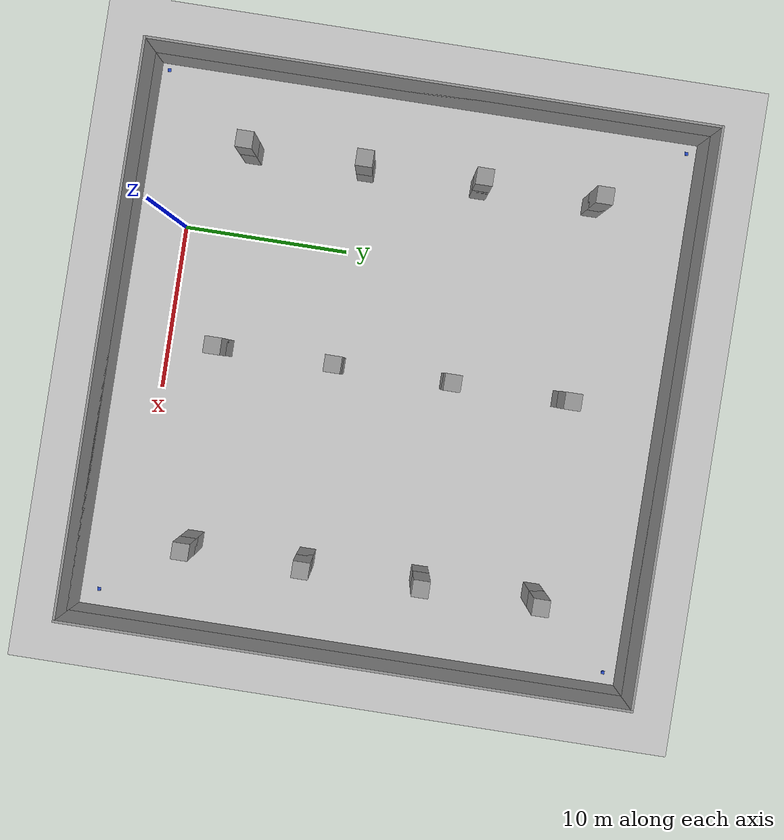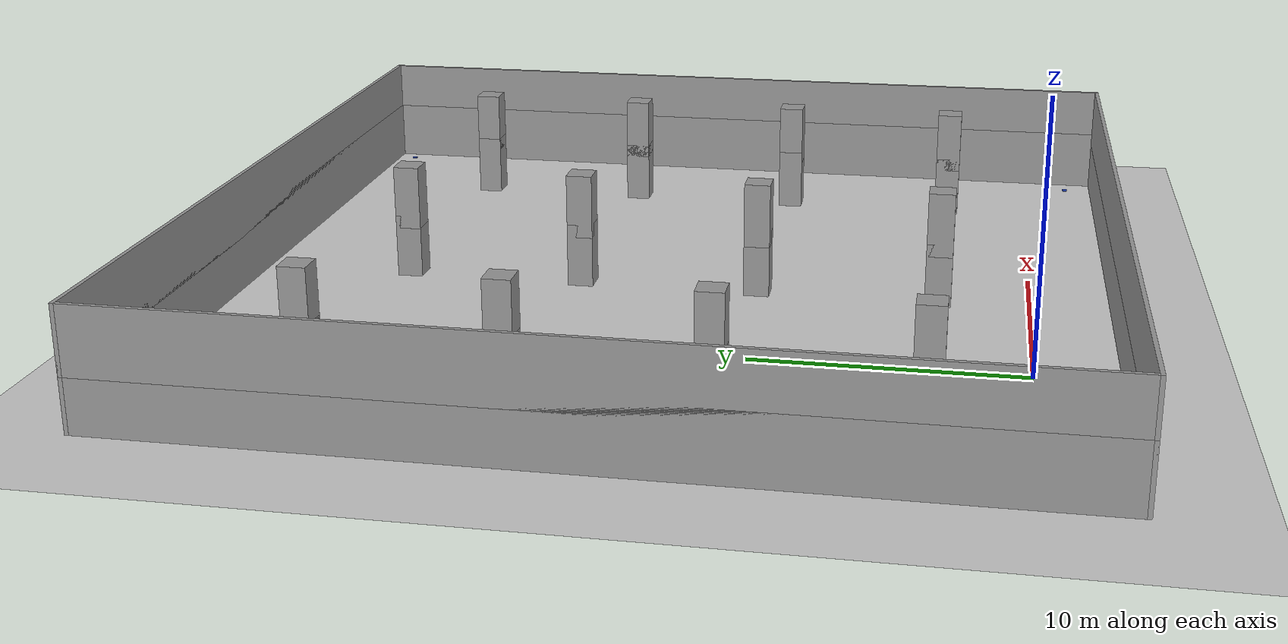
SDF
<sdf version="1.6">
 <world name="default">
  <light name="sun" type="directional">
   <pose>0 0 10 0 -0 0</pose>
   <diffuse>0.8 0.8 0.8 1</diffuse>
   <specular>0.2 0.2 0.2 1</specular>
   <attenuation>
    <range>1000</range>
    <constant>0.9</constant>
    <linear>0.01</linear>
    <quadratic>0.001</quadratic>
   </attenuation>
   <direction>-0.5 0.1 -0.9</direction>
  </light>
  <model name="ground_plane">
   <static>1</static>
   <link name="link">
    <collision name="collision">
     <geometry><plane><normal>0 0 1</normal><size>100 100</size></plane></geometry>
     <surface>
      <contact><collide_bitmask>65535</collide_bitmask></contact>
      <friction><ode><mu>100</mu><mu2>50</mu2></ode></friction>
     </surface>
    </collision>
    <visual name="visual">
     <cast_shadows>0</cast_shadows>
     <geometry><plane><normal>0 0 1</normal><size>100 100</size></plane></geometry>
     <material>
      <script><uri>file://media/materials/scripts/gazebo.material</uri><name>Gazebo/Grey</name></script>
     </material>
    </visual>
   </link>
  </model>
  <gravity>0 0 -9.8</gravity>
  <magnetic_field>6e-06 2.3e-05 -4.2e-05</magnetic_field>
  <atmosphere type="adiabatic"/>
  <physics name="default_physics" default="0" type="ode">
   <max_step_size>0.001</max_step_size>
   <real_time_factor>1</real_time_factor>
   <real_time_update_rate>1000</real_time_update_rate>
  </physics>
  <scene><ambient>0.4 0.4 0.4 1</ambient><background>0.7 0.7 0.7 1</background><shadows>1</shadows></scene>
  <spherical_coordinates>
   <surface_model>EARTH_WGS84</surface_model>
   <latitude_deg>0</latitude_deg>
   <longitude_deg>0</longitude_deg>
   <elevation>0</elevation>
   <heading_deg>0</heading_deg>
  </spherical_coordinates>
  <physics name="default_physics" default="0" type="ode">
   <ode>
    <solver>
     <type>quick</type>
     <iters>20</iters>
     <sor>1.3</sor>
     <use_dynamic_moi_rescaling>0</use_dynamic_moi_rescaling>
    </solver>
    <constraints>
     <cfm>0</cfm>
     <erp>0.2</erp>
     <contact_max_correcting_vel>100</contact_max_correcting_vel>
     <contact_surface_layer>0.001</contact_surface_layer>
    </constraints>
   </ode>
   <max_step_size>0.002</max_step_size>
   <real_time_factor>1</real_time_factor>
   <real_time_update_rate>500</real_time_update_rate>
  </physics>
  <audio><device>default</device></audio>
  <model name="garage">
   <pose>-10 -3 0 0 -0 0</pose>
   <link name="Wall_1">
    <collision name="Wall_1_Collision">
     <geometry><box><size>34 0.15 2.5</size></box></geometry>
     <pose>0 0 1.25 0 -0 0</pose>
    </collision>
    <visual name="Wall_1_Visual">
     <pose>0 0 1.25 0 -0 0</pose>
     <geometry><box><size>34 0.15 2.5</size></box></geometry>
     <material>
      <script><uri>file://media/materials/scripts/gazebo.material</uri><name>Gazebo/Grey</name></script>
      <ambient>1 1 1 1</ambient>
     </material>
     <meta><layer>0</layer></meta>
    </visual>
    <pose>17 -0.075 0 0 -0 0</pose>
   </link>
   <link name="Wall_2">
    <collision name="Wall_2_Collision">
     <geometry><box><size>0.15 33.8 2.5</size></box></geometry>
     <pose>0 0 1.25 0 -0 0</pose>
    </collision>
    <visual name="Wall_2_Visual">
     <pose>0 0 1.25 0 -0 0</pose>
     <geometry><box><size>0.15 33.8 2.5</size></box></geometry>
     <material>
      <script><uri>file://media/materials/scripts/gazebo.material</uri><name>Gazebo/Grey</name></script>
      <ambient>1 1 1 1</ambient>
     </material>
     <meta><layer>0</layer></meta>
    </visual>
    <pose>34.075 16.75 0 0 -0 0</pose>
   </link>
   <link name="Wall_3">
    <collision name="Wall_3_Collision">
     <geometry><box><size>34 0.15 2.5</size></box></geometry>
     <pose>0 0 1.25 0 -0 0</pose>
    </collision>
    <visual name="Wall_3_Visual">
     <pose>0 0 1.25 0 -0 0</pose>
     <geometry><box><size>34 0.15 2.5</size></box></geometry>
     <material>
      <script><uri>file://media/materials/scripts/gazebo.material</uri><name>Gazebo/Grey</name></script>
      <ambient>1 1 1 1</ambient>
     </material>
     <meta><layer>0</layer></meta>
    </visual>
    <pose>17 33.575 0 0 -0 0</pose>
   </link>
   <link name="Wall_4">
    <collision name="Wall_4_Collision">
     <geometry><box><size>0.15 33.5 2.5</size></box></geometry>
     <pose>0 0 1.25 0 -0 0</pose>
    </collision>
    <visual name="Wall_4_Visual">
     <pose>0 0 1.25 0 -0 0</pose>
     <geometry><box><size>0.15 33.5 2.5</size></box></geometry>
     <material>
      <script><uri>file://media/materials/scripts/gazebo.material</uri><name>Gazebo/Grey</name></script>
      <ambient>1 1 1 1</ambient>
     </material>
     <meta><layer>0</layer></meta>
    </visual>
    <pose>0.075 16.75 0 0 -0 0</pose>
   </link>
   <link name="pillar_1">
    <collision name="pillar_1_Collision">
     <geometry><box><size>1 1 2.5</size></box></geometry>
     <pose>0 0 1.25 0 -0 0</pose>
    </collision>
    <visual name="pillar_1_Visual">
     <pose>0 0 1.25 0 -0 0</pose>
     <geometry><box><size>1 1 2.5</size></box></geometry>
     <material>
      <script><uri>file://media/materials/scripts/gazebo.material</uri><name>Gazebo/Grey</name></script>
      <ambient>1 1 1 1</ambient>
     </material>
     <meta><layer>0</layer></meta>
    </visual>
    <pose>5 6.5 0 0 -0 0</pose>
   </link>
   <link name="pillar_2">
    <collision name="pillar_2_Collision">
     <geometry><box><size>1 1 2.5</size></box></geometry>
     <pose>0 0 1.25 0 -0 0</pose>
    </collision>
    <visual name="pillar_2_Visual">
     <pose>0 0 1.25 0 -0 0</pose>
     <geometry><box><size>1 1 2.5</size></box></geometry>
     <material>
      <script><uri>file://media/materials/scripts/gazebo.material</uri><name>Gazebo/Grey</name></script>
      <ambient>1 1 1 1</ambient>
     </material>
     <meta><layer>0</layer></meta>
    </visual>
    <pose>5 13.5 0 0 -0 0</pose>
   </link>
   <link name="pillar_3">
    <collision name="pillar_3_Collision">
     <geometry><box><size>1 1 2.5</size></box></geometry>
     <pose>0 0 1.25 0 -0 0</pose>
    </collision>
    <visual name="pillar_3_Visual">
     <pose>0 0 1.25 0 -0 0</pose>
     <geometry><box><size>1 1 2.5</size></box></geometry>
     <material>
      <script><uri>file://media/materials/scripts/gazebo.material</uri><name>Gazebo/Grey</name></script>
      <ambient>1 1 1 1</ambient>
     </material>
     <meta><layer>0</layer></meta>
    </visual>
    <pose>5 20.5 0 0 -0 0</pose>
   </link>
   <link name="pillar_4">
    <collision name="pillar_4_Collision">
     <geometry><box><size>1 1 2.5</size></box></geometry>
     <pose>0 0 1.25 0 -0 0</pose>
    </collision>
    <visual name="pillar_4_Visual">
     <pose>0 0 1.25 0 -0 0</pose>
     <geometry><box><size>1 1 2.5</size></box></geometry>
     <material>
      <script><uri>file://media/materials/scripts/gazebo.material</uri><name>Gazebo/Grey</name></script>
      <ambient>1 1 1 1</ambient>
     </material>
     <meta><layer>0</layer></meta>
    </visual>
    <pose>5 27.5 0 0 -0 0</pose>
   </link>
   <link name="pillar_5">
    <collision name="pillar_5_Collision">
     <geometry><box><size>1 1 2.5</size></box></geometry>
     <pose>0 0 1.25 0 -0 0</pose>
    </collision>
    <visual name="pillar_5_Visual">
     <pose>0 0 1.25 0 -0 0</pose>
     <geometry><box><size>1 1 2.5</size></box></geometry>
     <material>
      <script><uri>file://media/materials/scripts/gazebo.material</uri><name>Gazebo/Grey</name></script>
      <ambient>1 1 1 1</ambient>
     </material>
     <meta><layer>0</layer></meta>
    </visual>
    <pose>17 6.5 0 0 -0 0</pose>
   </link>
   <link name="pillar_6">
    <collision name="pillar_6_Collision">
     <geometry><box><size>1 1 2.5</size></box></geometry>
     <pose>0 0 1.25 0 -0 0</pose>
    </collision>
    <visual name="pillar_6_Visual">
     <pose>0 0 1.25 0 -0 0</pose>
     <geometry><box><size>1 1 2.5</size></box></geometry>
     <material>
      <script><uri>file://media/materials/scripts/gazebo.material</uri><name>Gazebo/Grey</name></script>
      <ambient>1 1 1 1</ambient>
     </material>
     <meta><layer>0</layer></meta>
    </visual>
    <pose>17 13.5 0 0 -0 0</pose>
   </link>
   <link name="pillar_7">
    <collision name="pillar_7_Collision">
     <geometry><box><size>1 1 2.5</size></box></geometry>
     <pose>0 0 1.25 0 -0 0</pose>
    </collision>
    <visual name="pillar_7_Visual">
     <pose>0 0 1.25 0 -0 0</pose>
     <geometry><box><size>1 1 2.5</size></box></geometry>
     <material>
      <script><uri>file://media/materials/scripts/gazebo.material</uri><name>Gazebo/Grey</name></script>
      <ambient>1 1 1 1</ambient>
     </material>
     <meta><layer>0</layer></meta>
    </visual>
    <pose>17 20.5 0 0 -0 0</pose>
   </link>
   <link name="pillar_8">
    <collision name="pillar_8_Collision">
     <geometry><box><size>1 1 2.5</size></box></geometry>
     <pose>0 0 1.25 0 -0 0</pose>
    </collision>
    <visual name="pillar_8_Visual">
     <pose>0 0 1.25 0 -0 0</pose>
     <geometry><box><size>1 1 2.5</size></box></geometry>
     <material>
      <script><uri>file://media/materials/scripts/gazebo.material</uri><name>Gazebo/Grey</name></script>
      <ambient>1 1 1 1</ambient>
     </material>
     <meta><layer>0</layer></meta>
    </visual>
    <pose>17 27.5 0 0 -0 0</pose>
   </link>
   <link name="pillar_9">
    <collision name="pillar_9_Collision">
     <geometry><box><size>1 1 2.5</size></box></geometry>
     <pose>0 0 1.25 0 -0 0</pose>
    </collision>
    <visual name="pillar_9_Visual">
     <pose>0 0 1.25 0 -0 0</pose>
     <geometry><box><size>1 1 2.5</size></box></geometry>
     <material>
      <script><uri>file://media/materials/scripts/gazebo.material</uri><name>Gazebo/Grey</name></script>
      <ambient>1 1 1 1</ambient>
     </material>
     <meta><layer>0</layer></meta>
    </visual>
    <pose>29 6.5 0 0 -0 0</pose>
   </link>
   <link name="pillar_10">
    <collision name="pillar_10_Collision">
     <geometry><box><size>1 1 2.5</size></box></geometry>
     <pose>0 0 1.25 0 -0 0</pose>
    </collision>
    <visual name="pillar_10_Visual">
     <pose>0 0 1.25 0 -0 0</pose>
     <geometry><box><size>1 1 2.5</size></box></geometry>
     <material>
      <script><uri>file://media/materials/scripts/gazebo.material</uri><name>Gazebo/Grey</name></script>
      <ambient>1 1 1 1</ambient>
     </material>
     <meta><layer>0</layer></meta>
    </visual>
    <pose>29 13.5 0 0 -0 0</pose>
   </link>
   <link name="pillar_1">
    <collision name="pillar_1_Collision">
     <geometry><box><size>1 1 2.5</size></box></geometry>
     <pose>0 0 1.25 0 -0 0</pose>
    </collision>
    <visual name="pillar_11_Visual">
     <pose>0 0 1.25 0 -0 0</pose>
     <geometry><box><size>1 1 2.5</size></box></geometry>
     <material>
      <script><uri>file://media/materials/scripts/gazebo.material</uri><name>Gazebo/Grey</name></script>
      <ambient>1 1 1 1</ambient>
     </material>
     <meta><layer>0</layer></meta>
    </visual>
    <pose>29 20.5 0 0 -0 0</pose>
   </link>
   <link name="pillar_12">
    <collision name="pillar_12_Collision">
     <geometry><box><size>1 1 2.5</size></box></geometry>
     <pose>0 0 1.25 0 -0 0</pose>
    </collision>
    <visual name="pillar_12_Visual">
     <pose>0 0 1.25 0 -0 0</pose>
     <geometry><box><size>1 1 2.5</size></box></geometry>
     <material>
      <script><uri>file://media/materials/scripts/gazebo.material</uri><name>Gazebo/Grey</name></script>
      <ambient>1 1 1 1</ambient>
     </material>
     <meta><layer>0</layer></meta>
    </visual>
    <pose>29 27.5 0 0 -0 0</pose>
   </link>
   <static>1</static>
  </model>
  <model name="garage_0">
   <pose>-10 -3 2 0 -0 0</pose>
   <link name="Wall_1">
    <collision name="Wall_1_Collision">
     <geometry><box><size>34 0.15 2.5</size></box></geometry>
     <pose>0 0 1.25 0 -0 0</pose>
    </collision>
    <visual name="Wall_1_Visual">
     <pose>0 0 1.25 0 -0 0</pose>
     <geometry><box><size>34 0.15 2.5</size></box></geometry>
     <material>
      <script><uri>file://media/materials/scripts/gazebo.material</uri><name>Gazebo/Grey</name></script>
      <ambient>1 1 1 1</ambient>
     </material>
     <meta><layer>0</layer></meta>
    </visual>
    <pose>17 -0.075 0 0 -0 0</pose>
   </link>
   <link name="Wall_2">
    <collision name="Wall_2_Collision">
     <geometry><box><size>0.15 33.8 2.5</size></box></geometry>
     <pose>0 0 1.25 0 -0 0</pose>
    </collision>
    <visual name="Wall_2_Visual">
     <pose>0 0 1.25 0 -0 0</pose>
     <geometry><box><size>0.15 33.8 2.5</size></box></geometry>
     <material>
      <script><uri>file://media/materials/scripts/gazebo.material</uri><name>Gazebo/Grey</name></script>
      <ambient>1 1 1 1</ambient>
     </material>
     <meta><layer>0</layer></meta>
    </visual>
    <pose>34.075 16.75 0 0 -0 0</pose>
   </link>
   <link name="Wall_3">
    <collision name="Wall_3_Collision">
     <geometry><box><size>34 0.15 2.5</size></box></geometry>
     <pose>0 0 1.25 0 -0 0</pose>
    </collision>
    <visual name="Wall_3_Visual">
     <pose>0 0 1.25 0 -0 0</pose>
     <geometry><box><size>34 0.15 2.5</size></box></geometry>
     <material>
      <script><uri>file://media/materials/scripts/gazebo.material</uri><name>Gazebo/Grey</name></script>
      <ambient>1 1 1 1</ambient>
     </material>
     <meta><layer>0</layer></meta>
    </visual>
    <pose>17 33.575 0 0 -0 0</pose>
   </link>
   <link name="Wall_4">
    <collision name="Wall_4_Collision">
     <geometry><box><size>0.15 33.5 2.5</size></box></geometry>
     <pose>0 0 1.25 0 -0 0</pose>
    </collision>
    <visual name="Wall_4_Visual">
     <pose>0 0 1.25 0 -0 0</pose>
     <geometry><box><size>0.15 33.5 2.5</size></box></geometry>
     <material>
      <script><uri>file://media/materials/scripts/gazebo.material</uri><name>Gazebo/Grey</name></script>
      <ambient>1 1 1 1</ambient>
     </material>
     <meta><layer>0</layer></meta>
    </visual>
    <pose>0.075 16.75 0 0 -0 0</pose>
   </link>
   <link name="pillar_1">
    <collision name="pillar_1_Collision">
     <geometry><box><size>1 1 2.5</size></box></geometry>
     <pose>0 0 1.25 0 -0 0</pose>
    </collision>
    <visual name="pillar_1_Visual">
     <pose>0 0 1.25 0 -0 0</pose>
     <geometry><box><size>1 1 2.5</size></box></geometry>
     <material>
      <script><uri>file://media/materials/scripts/gazebo.material</uri><name>Gazebo/Grey</name></script>
      <ambient>1 1 1 1</ambient>
     </material>
     <meta><layer>0</layer></meta>
    </visual>
    <pose>5 6.5 0 0 -0 0</pose>
   </link>
   <link name="pillar_2">
    <collision name="pillar_2_Collision">
     <geometry><box><size>1 1 2.5</size></box></geometry>
     <pose>0 0 1.25 0 -0 0</pose>
    </collision>
    <visual name="pillar_2_Visual">
     <pose>0 0 1.25 0 -0 0</pose>
     <geometry><box><size>1 1 2.5</size></box></geometry>
     <material>
      <script><uri>file://media/materials/scripts/gazebo.material</uri><name>Gazebo/Grey</name></script>
      <ambient>1 1 1 1</ambient>
     </material>
     <meta><layer>0</layer></meta>
    </visual>
    <pose>5 13.5 0 0 -0 0</pose>
   </link>
   <link name="pillar_3">
    <collision name="pillar_3_Collision">
     <geometry><box><size>1 1 2.5</size></box></geometry>
     <pose>0 0 1.25 0 -0 0</pose>
    </collision>
    <visual name="pillar_3_Visual">
     <pose>0 0 1.25 0 -0 0</pose>
     <geometry><box><size>1 1 2.5</size></box></geometry>
     <material>
      <script><uri>file://media/materials/scripts/gazebo.material</uri><name>Gazebo/Grey</name></script>
      <ambient>1 1 1 1</ambient>
     </material>
     <meta><layer>0</layer></meta>
    </visual>
    <pose>5 20.5 0 0 -0 0</pose>
   </link>
   <link name="pillar_4">
    <collision name="pillar_4_Collision">
     <geometry><box><size>1 1 2.5</size></box></geometry>
     <pose>0 0 1.25 0 -0 0</pose>
    </collision>
    <visual name="pillar_4_Visual">
     <pose>0 0 1.25 0 -0 0</pose>
     <geometry><box><size>1 1 2.5</size></box></geometry>
     <material>
      <script><uri>file://media/materials/scripts/gazebo.material</uri><name>Gazebo/Grey</name></script>
      <ambient>1 1 1 1</ambient>
     </material>
     <meta><layer>0</layer></meta>
    </visual>
    <pose>5 27.5 0 0 -0 0</pose>
   </link>
   <link name="pillar_5">
    <collision name="pillar_5_Collision">
     <geometry><box><size>1 1 2.5</size></box></geometry>
     <pose>0 0 1.25 0 -0 0</pose>
    </collision>
    <visual name="pillar_5_Visual">
     <pose>0 0 1.25 0 -0 0</pose>
     <geometry><box><size>1 1 2.5</size></box></geometry>
     <material>
      <script><uri>file://media/materials/scripts/gazebo.material</uri><name>Gazebo/Grey</name></script>
      <ambient>1 1 1 1</ambient>
     </material>
     <meta><layer>0</layer></meta>
    </visual>
    <pose>17 6.5 0 0 -0 0</pose>
   </link>
   <link name="pillar_6">
    <collision name="pillar_6_Collision">
     <geometry><box><size>1 1 2.5</size></box></geometry>
     <pose>0 0 1.25 0 -0 0</pose>
    </collision>
    <visual name="pillar_6_Visual">
     <pose>0 0 1.25 0 -0 0</pose>
     <geometry><box><size>1 1 2.5</size></box></geometry>
     <material>
      <script><uri>file://media/materials/scripts/gazebo.material</uri><name>Gazebo/Grey</name></script>
      <ambient>1 1 1 1</ambient>
     </material>
     <meta><layer>0</layer></meta>
    </visual>
    <pose>17 13.5 0 0 -0 0</pose>
   </link>
   <link name="pillar_7">
    <collision name="pillar_7_Collision">
     <geometry><box><size>1 1 2.5</size></box></geometry>
     <pose>0 0 1.25 0 -0 0</pose>
    </collision>
    <visual name="pillar_7_Visual">
     <pose>0 0 1.25 0 -0 0</pose>
     <geometry><box><size>1 1 2.5</size></box></geometry>
     <material>
      <script><uri>file://media/materials/scripts/gazebo.material</uri><name>Gazebo/Grey</name></script>
      <ambient>1 1 1 1</ambient>
     </material>
     <meta><layer>0</layer></meta>
    </visual>
    <pose>17 20.5 0 0 -0 0</pose>
   </link>
   <link name="pillar_8">
    <collision name="pillar_8_Collision">
     <geometry><box><size>1 1 2.5</size></box></geometry>
     <pose>0 0 1.25 0 -0 0</pose>
    </collision>
    <visual name="pillar_8_Visual">
     <pose>0 0 1.25 0 -0 0</pose>
     <geometry><box><size>1 1 2.5</size></box></geometry>
     <material>
      <script><uri>file://media/materials/scripts/gazebo.material</uri><name>Gazebo/Grey</name></script>
      <ambient>1 1 1 1</ambient>
     </material>
     <meta><layer>0</layer></meta>
    </visual>
    <pose>17 27.5 0 0 -0 0</pose>
   </link>
   <link name="pillar_9">
    <collision name="pillar_9_Collision">
     <geometry><box><size>1 1 2.5</size></box></geometry>
     <pose>0 0 1.25 0 -0 0</pose>
    </collision>
    <visual name="pillar_9_Visual">
     <pose>0 0 1.25 0 -0 0</pose>
     <geometry><box><size>1 1 2.5</size></box></geometry>
     <material>
      <script><uri>file://media/materials/scripts/gazebo.material</uri><name>Gazebo/Grey</name></script>
      <ambient>1 1 1 1</ambient>
     </material>
     <meta><layer>0</layer></meta>
    </visual>
    <pose>29 6.5 0 0 -0 0</pose>
   </link>
   <link name="pillar_10">
    <collision name="pillar_10_Collision">
     <geometry><box><size>1 1 2.5</size></box></geometry>
     <pose>0 0 1.25 0 -0 0</pose>
    </collision>
    <visual name="pillar_10_Visual">
     <pose>0 0 1.25 0 -0 0</pose>
     <geometry><box><size>1 1 2.5</size></box></geometry>
     <material>
      <script><uri>file://media/materials/scripts/gazebo.material</uri><name>Gazebo/Grey</name></script>
      <ambient>1 1 1 1</ambient>
     </material>
     <meta><layer>0</layer></meta>
    </visual>
    <pose>29 13.5 0 0 -0 0</pose>
   </link>
   <link name="pillar_1">
    <collision name="pillar_1_Collision">
     <geometry><box><size>1 1 2.5</size></box></geometry>
     <pose>0 0 1.25 0 -0 0</pose>
    </collision>
    <visual name="pillar_11_Visual">
     <pose>0 0 1.25 0 -0 0</pose>
     <geometry><box><size>1 1 2.5</size></box></geometry>
     <material>
      <script><uri>file://media/materials/scripts/gazebo.material</uri><name>Gazebo/Grey</name></script>
      <ambient>1 1 1 1</ambient>
     </material>
     <meta><layer>0</layer></meta>
    </visual>
    <pose>29 20.5 0 0 -0 0</pose>
   </link>
   <link name="pillar_12">
    <collision name="pillar_12_Collision">
     <geometry><box><size>1 1 2.5</size></box></geometry>
     <pose>0 0 1.25 0 -0 0</pose>
    </collision>
    <visual name="pillar_12_Visual">
     <pose>0 0 1.25 0 -0 0</pose>
     <geometry><box><size>1 1 2.5</size></box></geometry>
     <material>
      <script><uri>file://media/materials/scripts/gazebo.material</uri><name>Gazebo/Grey</name></script>
      <ambient>1 1 1 1</ambient>
     </material>
     <meta><layer>0</layer></meta>
    </visual>
    <pose>29 27.5 0 0 -0 0</pose>
   </link>
   <static>1</static>
  </model>
  <model name="router">
   <pose>-9.45421 -2.53462 0 0 -0 0</pose>
   <link name="router">
    <collision name="router_Collision">
     <geometry><box><size>0.2 0.2 0.05</size></box></geometry>
     <pose>0 0 0.025 0 -0 0</pose>
    </collision>
    <visual name="router_Visual">
     <pose>0 0 0.025 0 -0 0</pose>
     <geometry><box><size>0.2 0.2 0.05</size></box></geometry>
     <material>
      <script><uri>file://media/materials/scripts/gazebo.material</uri><name>Gazebo/Blue</name></script>
      <ambient>1 1 1 1</ambient>
     </material>
     <meta><layer>0</layer></meta>
    </visual>
   </link>
   <plugin name="router" filename="librouter.so">
    <topicName>router</topicName>
    <updateRate>10.0</updateRate>
    <range>17</range>
   </plugin>
   <static>1</static>
  </model>
  <model name="router_0">
   <pose>-9.26742 29.9073 0 0 -0 0</pose>
   <link name="router">
    <collision name="router_Collision">
     <geometry><box><size>0.2 0.2 0.05</size></box></geometry>
     <pose>0 0 0.025 0 -0 0</pose>
    </collision>
    <visual name="router_Visual">
     <pose>0 0 0.025 0 -0 0</pose>
     <geometry><box><size>0.2 0.2 0.05</size></box></geometry>
     <material>
      <script><uri>file://media/materials/scripts/gazebo.material</uri><name>Gazebo/Blue</name></script>
      <ambient>1 1 1 1</ambient>
     </material>
     <meta><layer>0</layer></meta>
    </visual>
   </link>
   <plugin name="router" filename="librouter.so">
    <topicName>router</topicName>
    <updateRate>10.0</updateRate>
    <range>17</range>
   </plugin>
   <static>1</static>
  </model>
  <model name="router_1">
   <pose>23.2973 29.7449 0 0 -0 0</pose>
   <link name="router">
    <collision name="router_Collision">
     <geometry><box><size>0.2 0.2 0.05</size></box></geometry>
     <pose>0 0 0.025 0 -0 0</pose>
    </collision>
    <visual name="router_Visual">
     <pose>0 0 0.025 0 -0 0</pose>
     <geometry><box><size>0.2 0.2 0.05</size></box></geometry>
     <material>
      <script><uri>file://media/materials/scripts/gazebo.material</uri><name>Gazebo/Blue</name></script>
      <ambient>1 1 1 1</ambient>
     </material>
     <meta><layer>0</layer></meta>
    </visual>
   </link>
   <plugin name="router" filename="librouter.so">
    <topicName>router</topicName>
    <updateRate>10.0</updateRate>
    <range>17</range>
   </plugin>
   <static>1</static>
  </model>
  <model name="router_2">
   <pose>22.9929 -1.89837 0 0 -0 0</pose>
   <link name="router">
    <collision name="router_Collision">
     <geometry><box><size>0.2 0.2 0.05</size></box></geometry>
     <pose>0 0 0.025 0 -0 0</pose>
    </collision>
    <visual name="router_Visual">
     <pose>0 0 0.025 0 -0 0</pose>
     <geometry><box><size>0.2 0.2 0.05</size></box></geometry>
     <material>
      <script><uri>file://media/materials/scripts/gazebo.material</uri><name>Gazebo/Blue</name></script>
      <ambient>1 1 1 1</ambient>
     </material>
     <meta><layer>0</layer></meta>
    </visual>
   </link>
   <plugin name="router" filename="librouter.so">
    <topicName>router</topicName>
    <updateRate>10.0</updateRate>
    <range>17</range>
   </plugin>
   <static>1</static>
  </model>
 </world>
</sdf>
